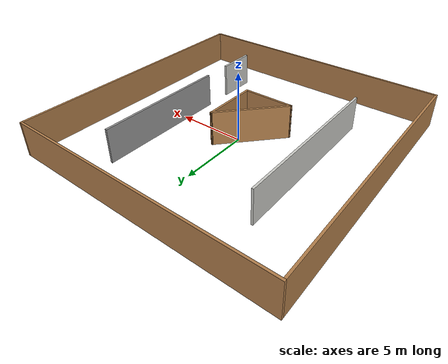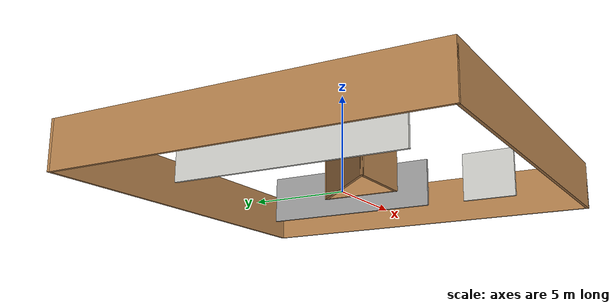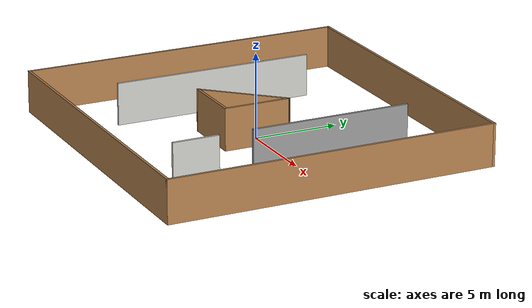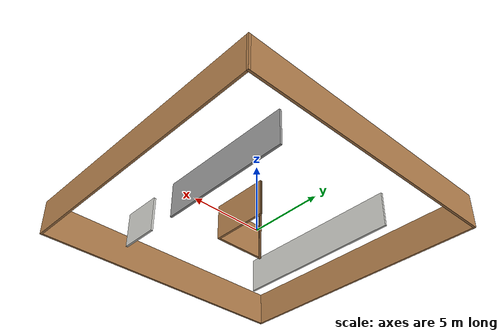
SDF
<?xml version='1.0'?>
<sdf version='1.6'>
  <model name='museum'>
    <pose frame=''>-0.029135 -0.056032 0 0 -0 0</pose>
    <link name='Wall_13'>
      <collision name='Wall_13_Collision'>
        <geometry>
          <box>
            <size>19.5 0.15 2.5</size>
          </box>
        </geometry>
        <pose frame=''>0 0 1.25 0 -0 0</pose>
      </collision>
      <visual name='Wall_13_Visual'>
        <pose frame=''>0 0 1.25 0 -0 0</pose>
        <geometry>
          <box>
            <size>19.5 0.15 2.5</size>
          </box>
        </geometry>
        <material>
          <script>
            <uri>file://media/materials/scripts/gazebo.material</uri>
            <name>Gazebo/Wood</name>
          </script>
          <ambient>1 1 1 1</ambient>
        </material>
        <meta>
          <layer>0</layer>
        </meta>
      </visual>
      <pose frame=''>-9.675 0 0 0 -0 -1.5708</pose>
    </link>
    <link name='Wall_14'>
      <collision name='Wall_14_Collision'>
        <geometry>
          <box>
            <size>19.5 0.15 2.5</size>
          </box>
        </geometry>
        <pose frame=''>0 0 1.25 0 -0 0</pose>
      </collision>
      <visual name='Wall_14_Visual'>
        <pose frame=''>0 0 1.25 0 -0 0</pose>
        <geometry>
          <box>
            <size>19.5 0.15 2.5</size>
          </box>
        </geometry>
        <material>
          <script>
            <uri>file://media/materials/scripts/gazebo.material</uri>
            <name>Gazebo/Wood</name>
          </script>
          <ambient>1 1 1 1</ambient>
        </material>
        <meta>
          <layer>0</layer>
        </meta>
      </visual>
      <pose frame=''>0 -9.675 0 0 -0 0</pose>
    </link>
    <link name='Wall_15'>
      <collision name='Wall_15_Collision'>
        <geometry>
          <box>
            <size>19.5 0.15 2.5</size>
          </box>
        </geometry>
        <pose frame=''>0 0 1.25 0 -0 0</pose>
      </collision>
      <visual name='Wall_15_Visual'>
        <pose frame=''>0 0 1.25 0 -0 0</pose>
        <geometry>
          <box>
            <size>19.5 0.15 2.5</size>
          </box>
        </geometry>
        <material>
          <script>
            <uri>file://media/materials/scripts/gazebo.material</uri>
            <name>Gazebo/Wood</name>
          </script>
          <ambient>1 1 1 1</ambient>
        </material>
        <meta>
          <layer>0</layer>
        </meta>
      </visual>
      <pose frame=''>9.675 0 0 0 -0 1.5708</pose>
    </link>
    <link name='Wall_16'>
      <collision name='Wall_16_Collision'>
        <geometry>
          <box>
            <size>19.5 0.15 2.5</size>
          </box>
        </geometry>
        <pose frame=''>0 0 1.25 0 -0 0</pose>
      </collision>
      <visual name='Wall_16_Visual'>
        <pose frame=''>0 0 1.25 0 -0 0</pose>
        <geometry>
          <box>
            <size>19.5 0.15 2.5</size>
          </box>
        </geometry>
        <material>
          <script>
            <uri>file://media/materials/scripts/gazebo.material</uri>
            <name>Gazebo/Wood</name>
          </script>
          <ambient>1 1 1 1</ambient>
        </material>
        <meta>
          <layer>0</layer>
        </meta>
      </visual>
      <pose frame=''>0 9.675 0 0 -0 3.14159</pose>
    </link>
    <link name='Wall_21'>
      <collision name='Wall_21_Collision'>
        <geometry>
          <box>
            <size>12 0.15 2.5</size>
          </box>
        </geometry>
        <pose frame=''>0 0 1.25 0 -0 0</pose>
      </collision>
      <visual name='Wall_21_Visual'>
        <pose frame=''>0 0 1.25 0 -0 0</pose>
        <geometry>
          <box>
            <size>12 0.15 2.5</size>
          </box>
        </geometry>
        <material>
          <script>
            <uri>file://media/materials/scripts/gazebo.material</uri>
            <name>Gazebo/CeilingTiled</name>
          </script>
          <ambient>1 1 1 1</ambient>
        </material>
        <meta>
          <layer>0</layer>
        </meta>
      </visual>
      <pose frame=''>-5.43986 -0.003094 0 0 -0 -1.5708</pose>
    </link>
    <link name='Wall_23'>
      <collision name='Wall_23_Collision'>
        <geometry>
          <box>
            <size>3.75 0.15 2.5</size>
          </box>
        </geometry>
        <pose frame=''>0 0 1.25 0 -0 0</pose>
      </collision>
      <visual name='Wall_23_Visual'>
        <pose frame=''>0 0 1.25 0 -0 0</pose>
        <geometry>
          <box>
            <size>3.75 0.15 2.5</size>
          </box>
        </geometry>
        <material>
          <script>
            <uri>file://media/materials/scripts/gazebo.material</uri>
            <name>Gazebo/Wood</name>
          </script>
          <ambient>1 1 1 1</ambient>
        </material>
        <meta>
          <layer>0</layer>
        </meta>
      </visual>
      <pose frame=''>-0.697226 -2.31748 0 0 -0 0</pose>
    </link>
    <link name='Wall_24'>
      <collision name='Wall_24_Collision'>
        <geometry>
          <box>
            <size>4 0.15 2.5</size>
          </box>
        </geometry>
        <pose frame=''>0 0 1.25 0 -0 0</pose>
      </collision>
      <visual name='Wall_24_Visual'>
        <pose frame=''>0 0 1.25 0 -0 0</pose>
        <geometry>
          <box>
            <size>4 0.15 2.5</size>
          </box>
        </geometry>
        <material>
          <script>
            <uri>file://media/materials/scripts/gazebo.material</uri>
            <name>Gazebo/Wood</name>
          </script>
          <ambient>1 1 1 1</ambient>
        </material>
        <meta>
          <layer>0</layer>
        </meta>
      </visual>
      <pose frame=''>1.10277 -0.392479 0 0 -0 1.5708</pose>
    </link>
    <link name='Wall_25'>
      <collision name='Wall_25_Collision'>
        <geometry>
          <box>
            <size>5.42091 0.15 2.5</size>
          </box>
        </geometry>
        <pose frame=''>0 0 1.25 0 -0 0</pose>
      </collision>
      <visual name='Wall_25_Visual'>
        <pose frame=''>0 0 1.25 0 -0 0</pose>
        <geometry>
          <box>
            <size>5.42091 0.15 2.5</size>
          </box>
        </geometry>
        <material>
          <script>
            <uri>file://media/materials/scripts/gazebo.material</uri>
            <name>Gazebo/Wood</name>
          </script>
          <ambient>1 1 1 1</ambient>
        </material>
        <meta>
          <layer>0</layer>
        </meta>
      </visual>
      <pose frame=''>-0.697226 -0.392479 0 0 -0 -2.32265</pose>
    </link>
    <link name='Wall_28'>
      <collision name='Wall_28_Collision'>
        <geometry>
          <box>
            <size>9.5 0.15 2.5</size>
          </box>
        </geometry>
        <pose frame=''>0 0 1.25 0 -0 0</pose>
      </collision>
      <visual name='Wall_28_Visual'>
        <pose frame=''>0 0 1.25 0 -0 0</pose>
        <geometry>
          <box>
            <size>9.5 0.15 2.5</size>
          </box>
        </geometry>
        <material>
          <script>
            <uri>file://media/materials/scripts/gazebo.material</uri>
            <name>Gazebo/Grey</name>
          </script>
          <ambient>1 1 1 1</ambient>
        </material>
        <meta>
          <layer>0</layer>
        </meta>
      </visual>
      <pose frame=''>4.83262 2.26345 0 0 -0 -1.5708</pose>
    </link>
    <link name='Wall_31'>
      <collision name='Wall_31_Collision'>
        <geometry>
          <box>
            <size>2.75 0.15 2.5</size>
          </box>
        </geometry>
        <pose frame=''>0 0 1.25 0 -0 0</pose>
      </collision>
      <visual name='Wall_31_Visual'>
        <pose frame=''>0 0 1.25 0 -0 0</pose>
        <geometry>
          <box>
            <size>2.75 0.15 2.5</size>
          </box>
        </geometry>
        <material>
          <script>
            <uri>file://media/materials/scripts/gazebo.material</uri>
            <name>Gazebo/CeilingTiled</name>
          </script>
          <ambient>1 1 1 1</ambient>
        </material>
        <meta>
          <layer>0</layer>
        </meta>
      </visual>
      <pose frame=''>4.83262 -5.86458 0 0 -0 -1.5708</pose>
    </link>
    <static>1</static>
  </model>
</sdf>
